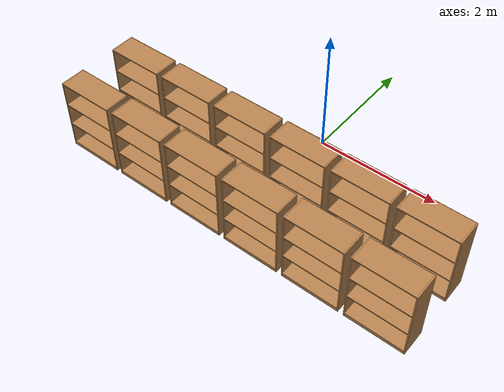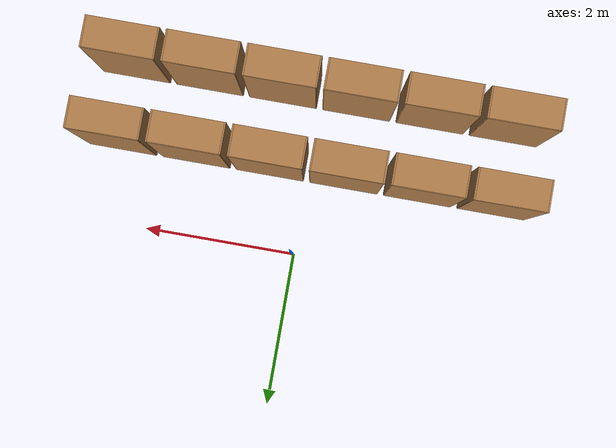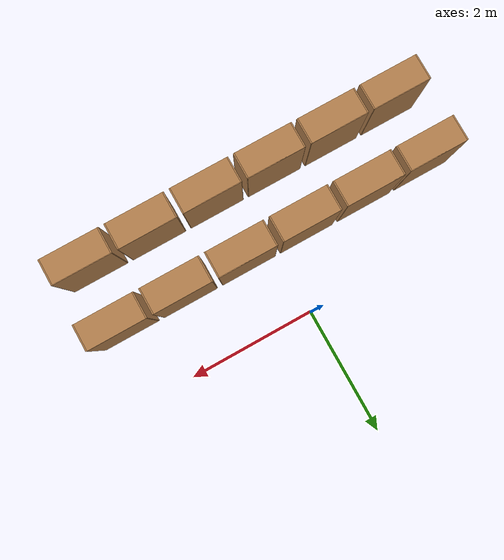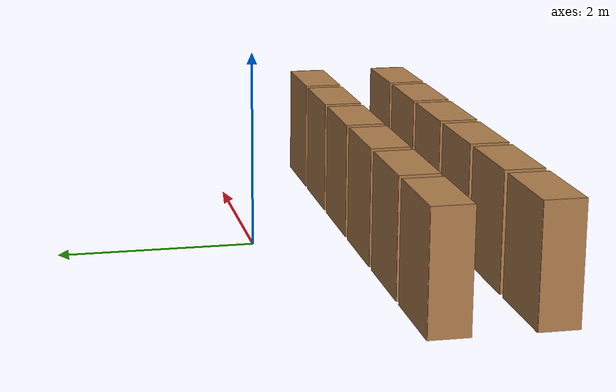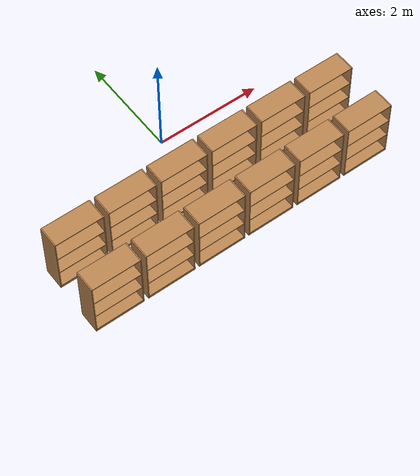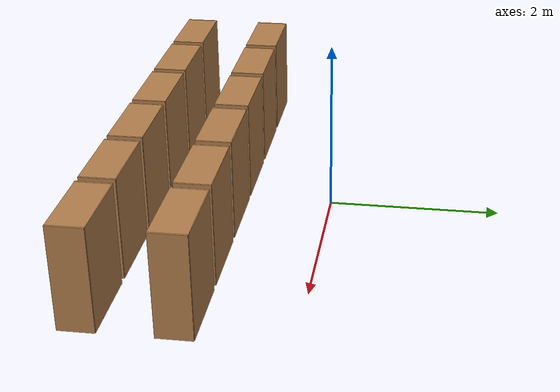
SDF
<sdf version="1.6">
 <model name="5Bookshelves">
  <model name="BookshelfRow">
   <model name="bookshelf">
    <static>1</static>
    <link name="link">
     <inertial><mass>1</mass></inertial>
     <collision name="back">
      <pose>0 0.005 0.6 0 -0 0</pose>
      <geometry><box><size>0.9 0.01 1.2</size></box></geometry>
     </collision>
     <visual name="visual1">
      <pose>0 0.005 0.6 0 -0 0</pose>
      <geometry><box><size>0.9 0.01 1.2</size></box></geometry>
      <material>
       <script><uri>file://media/materials/scripts/gazebo.material</uri><name>Gazebo/Wood</name></script>
      </material>
     </visual>
     <collision name="left_side">
      <pose>0.45 -0.195 0.6 0 -0 0</pose>
      <geometry><box><size>0.02 0.4 1.2</size></box></geometry>
     </collision>
     <visual name="visual2">
      <pose>0.45 -0.195 0.6 0 -0 0</pose>
      <geometry><box><size>0.02 0.4 1.2</size></box></geometry>
      <material>
       <script><uri>file://media/materials/scripts/gazebo.material</uri><name>Gazebo/Wood</name></script>
      </material>
     </visual>
     <collision name="right_side">
      <pose>-0.45 -0.195 0.6 0 -0 0</pose>
      <geometry><box><size>0.02 0.4 1.2</size></box></geometry>
     </collision>
     <visual name="visual3">
      <pose>-0.45 -0.195 0.6 0 -0 0</pose>
      <geometry><box><size>0.02 0.4 1.2</size></box></geometry>
      <material>
       <script><uri>file://media/materials/scripts/gazebo.material</uri><name>Gazebo/Wood</name></script>
      </material>
     </visual>
     <collision name="bottom">
      <pose>0 -0.195 0.03 0 -0 0</pose>
      <geometry><box><size>0.88 0.4 0.06</size></box></geometry>
     </collision>
     <visual name="visual4">
      <pose>0 -0.195 0.03 0 -0 0</pose>
      <geometry><box><size>0.88 0.4 0.06</size></box></geometry>
      <material>
       <script><uri>file://media/materials/scripts/gazebo.material</uri><name>Gazebo/Wood</name></script>
      </material>
     </visual>
     <collision name="top">
      <pose>0 -0.195 1.19 0 -0 0</pose>
      <geometry><box><size>0.88 0.4 0.02</size></box></geometry>
     </collision>
     <visual name="visual5">
      <pose>0 -0.195 1.19 0 -0 0</pose>
      <geometry><box><size>0.88 0.4 0.02</size></box></geometry>
      <material>
       <script><uri>file://media/materials/scripts/gazebo.material</uri><name>Gazebo/Wood</name></script>
      </material>
     </visual>
     <collision name="low_shelf">
      <pose>0 -0.195 0.43 0 -0 0</pose>
      <geometry><box><size>0.88 0.4 0.02</size></box></geometry>
     </collision>
     <visual name="visual6">
      <pose>0 -0.195 0.43 0 -0 0</pose>
      <geometry><box><size>0.88 0.4 0.02</size></box></geometry>
      <material>
       <script><uri>file://media/materials/scripts/gazebo.material</uri><name>Gazebo/Wood</name></script>
      </material>
     </visual>
     <collision name="high_shelf">
      <pose>0 -0.195 0.8 0 -0 0</pose>
      <geometry><box><size>0.88 0.4 0.02</size></box></geometry>
     </collision>
     <visual name="visual7">
      <pose>0 -0.195 0.8 0 -0 0</pose>
      <geometry><box><size>0.88 0.4 0.02</size></box></geometry>
      <material>
       <script><uri>file://media/materials/scripts/gazebo.material</uri><name>Gazebo/Wood</name></script>
      </material>
     </visual>
    </link>
    <pose>-2.5 0 0 0 -0 0</pose>
   </model>
   <model name="bookshelf_0">
    <static>1</static>
    <link name="link">
     <inertial><mass>1</mass></inertial>
     <collision name="back">
      <pose>0 0.005 0.6 0 -0 0</pose>
      <geometry><box><size>0.9 0.01 1.2</size></box></geometry>
     </collision>
     <visual name="visual1">
      <pose>0 0.005 0.6 0 -0 0</pose>
      <geometry><box><size>0.9 0.01 1.2</size></box></geometry>
      <material>
       <script><uri>file://media/materials/scripts/gazebo.material</uri><name>Gazebo/Wood</name></script>
      </material>
     </visual>
     <collision name="left_side">
      <pose>0.45 -0.195 0.6 0 -0 0</pose>
      <geometry><box><size>0.02 0.4 1.2</size></box></geometry>
     </collision>
     <visual name="visual2">
      <pose>0.45 -0.195 0.6 0 -0 0</pose>
      <geometry><box><size>0.02 0.4 1.2</size></box></geometry>
      <material>
       <script><uri>file://media/materials/scripts/gazebo.material</uri><name>Gazebo/Wood</name></script>
      </material>
     </visual>
     <collision name="right_side">
      <pose>-0.45 -0.195 0.6 0 -0 0</pose>
      <geometry><box><size>0.02 0.4 1.2</size></box></geometry>
     </collision>
     <visual name="visual3">
      <pose>-0.45 -0.195 0.6 0 -0 0</pose>
      <geometry><box><size>0.02 0.4 1.2</size></box></geometry>
      <material>
       <script><uri>file://media/materials/scripts/gazebo.material</uri><name>Gazebo/Wood</name></script>
      </material>
     </visual>
     <collision name="bottom">
      <pose>0 -0.195 0.03 0 -0 0</pose>
      <geometry><box><size>0.88 0.4 0.06</size></box></geometry>
     </collision>
     <visual name="visual4">
      <pose>0 -0.195 0.03 0 -0 0</pose>
      <geometry><box><size>0.88 0.4 0.06</size></box></geometry>
      <material>
       <script><uri>file://media/materials/scripts/gazebo.material</uri><name>Gazebo/Wood</name></script>
      </material>
     </visual>
     <collision name="top">
      <pose>0 -0.195 1.19 0 -0 0</pose>
      <geometry><box><size>0.88 0.4 0.02</size></box></geometry>
     </collision>
     <visual name="visual5">
      <pose>0 -0.195 1.19 0 -0 0</pose>
      <geometry><box><size>0.88 0.4 0.02</size></box></geometry>
      <material>
       <script><uri>file://media/materials/scripts/gazebo.material</uri><name>Gazebo/Wood</name></script>
      </material>
     </visual>
     <collision name="low_shelf">
      <pose>0 -0.195 0.43 0 -0 0</pose>
      <geometry><box><size>0.88 0.4 0.02</size></box></geometry>
     </collision>
     <visual name="visual6">
      <pose>0 -0.195 0.43 0 -0 0</pose>
      <geometry><box><size>0.88 0.4 0.02</size></box></geometry>
      <material>
       <script><uri>file://media/materials/scripts/gazebo.material</uri><name>Gazebo/Wood</name></script>
      </material>
     </visual>
     <collision name="high_shelf">
      <pose>0 -0.195 0.8 0 -0 0</pose>
      <geometry><box><size>0.88 0.4 0.02</size></box></geometry>
     </collision>
     <visual name="visual7">
      <pose>0 -0.195 0.8 0 -0 0</pose>
      <geometry><box><size>0.88 0.4 0.02</size></box></geometry>
      <material>
       <script><uri>file://media/materials/scripts/gazebo.material</uri><name>Gazebo/Wood</name></script>
      </material>
     </visual>
    </link>
    <pose>-1.5 0 0 0 -0 0</pose>
   </model>
   <model name="bookshelf_1">
    <static>1</static>
    <link name="link">
     <inertial><mass>1</mass></inertial>
     <collision name="back">
      <pose>0 0.005 0.6 0 -0 0</pose>
      <geometry><box><size>0.9 0.01 1.2</size></box></geometry>
     </collision>
     <visual name="visual1">
      <pose>0 0.005 0.6 0 -0 0</pose>
      <geometry><box><size>0.9 0.01 1.2</size></box></geometry>
      <material>
       <script><uri>file://media/materials/scripts/gazebo.material</uri><name>Gazebo/Wood</name></script>
      </material>
     </visual>
     <collision name="left_side">
      <pose>0.45 -0.195 0.6 0 -0 0</pose>
      <geometry><box><size>0.02 0.4 1.2</size></box></geometry>
     </collision>
     <visual name="visual2">
      <pose>0.45 -0.195 0.6 0 -0 0</pose>
      <geometry><box><size>0.02 0.4 1.2</size></box></geometry>
      <material>
       <script><uri>file://media/materials/scripts/gazebo.material</uri><name>Gazebo/Wood</name></script>
      </material>
     </visual>
     <collision name="right_side">
      <pose>-0.45 -0.195 0.6 0 -0 0</pose>
      <geometry><box><size>0.02 0.4 1.2</size></box></geometry>
     </collision>
     <visual name="visual3">
      <pose>-0.45 -0.195 0.6 0 -0 0</pose>
      <geometry><box><size>0.02 0.4 1.2</size></box></geometry>
      <material>
       <script><uri>file://media/materials/scripts/gazebo.material</uri><name>Gazebo/Wood</name></script>
      </material>
     </visual>
     <collision name="bottom">
      <pose>0 -0.195 0.03 0 -0 0</pose>
      <geometry><box><size>0.88 0.4 0.06</size></box></geometry>
     </collision>
     <visual name="visual4">
      <pose>0 -0.195 0.03 0 -0 0</pose>
      <geometry><box><size>0.88 0.4 0.06</size></box></geometry>
      <material>
       <script><uri>file://media/materials/scripts/gazebo.material</uri><name>Gazebo/Wood</name></script>
      </material>
     </visual>
     <collision name="top">
      <pose>0 -0.195 1.19 0 -0 0</pose>
      <geometry><box><size>0.88 0.4 0.02</size></box></geometry>
     </collision>
     <visual name="visual5">
      <pose>0 -0.195 1.19 0 -0 0</pose>
      <geometry><box><size>0.88 0.4 0.02</size></box></geometry>
      <material>
       <script><uri>file://media/materials/scripts/gazebo.material</uri><name>Gazebo/Wood</name></script>
      </material>
     </visual>
     <collision name="low_shelf">
      <pose>0 -0.195 0.43 0 -0 0</pose>
      <geometry><box><size>0.88 0.4 0.02</size></box></geometry>
     </collision>
     <visual name="visual6">
      <pose>0 -0.195 0.43 0 -0 0</pose>
      <geometry><box><size>0.88 0.4 0.02</size></box></geometry>
      <material>
       <script><uri>file://media/materials/scripts/gazebo.material</uri><name>Gazebo/Wood</name></script>
      </material>
     </visual>
     <collision name="high_shelf">
      <pose>0 -0.195 0.8 0 -0 0</pose>
      <geometry><box><size>0.88 0.4 0.02</size></box></geometry>
     </collision>
     <visual name="visual7">
      <pose>0 -0.195 0.8 0 -0 0</pose>
      <geometry><box><size>0.88 0.4 0.02</size></box></geometry>
      <material>
       <script><uri>file://media/materials/scripts/gazebo.material</uri><name>Gazebo/Wood</name></script>
      </material>
     </visual>
    </link>
    <pose>-0.5 0 0 0 -0 0</pose>
   </model>
   <model name="bookshelf_2">
    <static>1</static>
    <link name="link">
     <inertial><mass>1</mass></inertial>
     <collision name="back">
      <pose>0 0.005 0.6 0 -0 0</pose>
      <geometry><box><size>0.9 0.01 1.2</size></box></geometry>
     </collision>
     <visual name="visual1">
      <pose>0 0.005 0.6 0 -0 0</pose>
      <geometry><box><size>0.9 0.01 1.2</size></box></geometry>
      <material>
       <script><uri>file://media/materials/scripts/gazebo.material</uri><name>Gazebo/Wood</name></script>
      </material>
     </visual>
     <collision name="left_side">
      <pose>0.45 -0.195 0.6 0 -0 0</pose>
      <geometry><box><size>0.02 0.4 1.2</size></box></geometry>
     </collision>
     <visual name="visual2">
      <pose>0.45 -0.195 0.6 0 -0 0</pose>
      <geometry><box><size>0.02 0.4 1.2</size></box></geometry>
      <material>
       <script><uri>file://media/materials/scripts/gazebo.material</uri><name>Gazebo/Wood</name></script>
      </material>
     </visual>
     <collision name="right_side">
      <pose>-0.45 -0.195 0.6 0 -0 0</pose>
      <geometry><box><size>0.02 0.4 1.2</size></box></geometry>
     </collision>
     <visual name="visual3">
      <pose>-0.45 -0.195 0.6 0 -0 0</pose>
      <geometry><box><size>0.02 0.4 1.2</size></box></geometry>
      <material>
       <script><uri>file://media/materials/scripts/gazebo.material</uri><name>Gazebo/Wood</name></script>
      </material>
     </visual>
     <collision name="bottom">
      <pose>0 -0.195 0.03 0 -0 0</pose>
      <geometry><box><size>0.88 0.4 0.06</size></box></geometry>
     </collision>
     <visual name="visual4">
      <pose>0 -0.195 0.03 0 -0 0</pose>
      <geometry><box><size>0.88 0.4 0.06</size></box></geometry>
      <material>
       <script><uri>file://media/materials/scripts/gazebo.material</uri><name>Gazebo/Wood</name></script>
      </material>
     </visual>
     <collision name="top">
      <pose>0 -0.195 1.19 0 -0 0</pose>
      <geometry><box><size>0.88 0.4 0.02</size></box></geometry>
     </collision>
     <visual name="visual5">
      <pose>0 -0.195 1.19 0 -0 0</pose>
      <geometry><box><size>0.88 0.4 0.02</size></box></geometry>
      <material>
       <script><uri>file://media/materials/scripts/gazebo.material</uri><name>Gazebo/Wood</name></script>
      </material>
     </visual>
     <collision name="low_shelf">
      <pose>0 -0.195 0.43 0 -0 0</pose>
      <geometry><box><size>0.88 0.4 0.02</size></box></geometry>
     </collision>
     <visual name="visual6">
      <pose>0 -0.195 0.43 0 -0 0</pose>
      <geometry><box><size>0.88 0.4 0.02</size></box></geometry>
      <material>
       <script><uri>file://media/materials/scripts/gazebo.material</uri><name>Gazebo/Wood</name></script>
      </material>
     </visual>
     <collision name="high_shelf">
      <pose>0 -0.195 0.8 0 -0 0</pose>
      <geometry><box><size>0.88 0.4 0.02</size></box></geometry>
     </collision>
     <visual name="visual7">
      <pose>0 -0.195 0.8 0 -0 0</pose>
      <geometry><box><size>0.88 0.4 0.02</size></box></geometry>
      <material>
       <script><uri>file://media/materials/scripts/gazebo.material</uri><name>Gazebo/Wood</name></script>
      </material>
     </visual>
    </link>
    <pose>0.5 0 0 0 -0 0</pose>
   </model>
   <model name="bookshelf_3">
    <static>1</static>
    <link name="link">
     <inertial><mass>1</mass></inertial>
     <collision name="back">
      <pose>0 0.005 0.6 0 -0 0</pose>
      <geometry><box><size>0.9 0.01 1.2</size></box></geometry>
     </collision>
     <visual name="visual1">
      <pose>0 0.005 0.6 0 -0 0</pose>
      <geometry><box><size>0.9 0.01 1.2</size></box></geometry>
      <material>
       <script><uri>file://media/materials/scripts/gazebo.material</uri><name>Gazebo/Wood</name></script>
      </material>
     </visual>
     <collision name="left_side">
      <pose>0.45 -0.195 0.6 0 -0 0</pose>
      <geometry><box><size>0.02 0.4 1.2</size></box></geometry>
     </collision>
     <visual name="visual2">
      <pose>0.45 -0.195 0.6 0 -0 0</pose>
      <geometry><box><size>0.02 0.4 1.2</size></box></geometry>
      <material>
       <script><uri>file://media/materials/scripts/gazebo.material</uri><name>Gazebo/Wood</name></script>
      </material>
     </visual>
     <collision name="right_side">
      <pose>-0.45 -0.195 0.6 0 -0 0</pose>
      <geometry><box><size>0.02 0.4 1.2</size></box></geometry>
     </collision>
     <visual name="visual3">
      <pose>-0.45 -0.195 0.6 0 -0 0</pose>
      <geometry><box><size>0.02 0.4 1.2</size></box></geometry>
      <material>
       <script><uri>file://media/materials/scripts/gazebo.material</uri><name>Gazebo/Wood</name></script>
      </material>
     </visual>
     <collision name="bottom">
      <pose>0 -0.195 0.03 0 -0 0</pose>
      <geometry><box><size>0.88 0.4 0.06</size></box></geometry>
     </collision>
     <visual name="visual4">
      <pose>0 -0.195 0.03 0 -0 0</pose>
      <geometry><box><size>0.88 0.4 0.06</size></box></geometry>
      <material>
       <script><uri>file://media/materials/scripts/gazebo.material</uri><name>Gazebo/Wood</name></script>
      </material>
     </visual>
     <collision name="top">
      <pose>0 -0.195 1.19 0 -0 0</pose>
      <geometry><box><size>0.88 0.4 0.02</size></box></geometry>
     </collision>
     <visual name="visual5">
      <pose>0 -0.195 1.19 0 -0 0</pose>
      <geometry><box><size>0.88 0.4 0.02</size></box></geometry>
      <material>
       <script><uri>file://media/materials/scripts/gazebo.material</uri><name>Gazebo/Wood</name></script>
      </material>
     </visual>
     <collision name="low_shelf">
      <pose>0 -0.195 0.43 0 -0 0</pose>
      <geometry><box><size>0.88 0.4 0.02</size></box></geometry>
     </collision>
     <visual name="visual6">
      <pose>0 -0.195 0.43 0 -0 0</pose>
      <geometry><box><size>0.88 0.4 0.02</size></box></geometry>
      <material>
       <script><uri>file://media/materials/scripts/gazebo.material</uri><name>Gazebo/Wood</name></script>
      </material>
     </visual>
     <collision name="high_shelf">
      <pose>0 -0.195 0.8 0 -0 0</pose>
      <geometry><box><size>0.88 0.4 0.02</size></box></geometry>
     </collision>
     <visual name="visual7">
      <pose>0 -0.195 0.8 0 -0 0</pose>
      <geometry><box><size>0.88 0.4 0.02</size></box></geometry>
      <material>
       <script><uri>file://media/materials/scripts/gazebo.material</uri><name>Gazebo/Wood</name></script>
      </material>
     </visual>
    </link>
    <pose>1.5 0 0 0 -0 0</pose>
   </model>
   <model name="bookshelf_4">
    <static>1</static>
    <link name="link">
     <inertial><mass>1</mass></inertial>
     <collision name="back">
      <pose>0 0.005 0.6 0 -0 0</pose>
      <geometry><box><size>0.9 0.01 1.2</size></box></geometry>
     </collision>
     <visual name="visual1">
      <pose>0 0.005 0.6 0 -0 0</pose>
      <geometry><box><size>0.9 0.01 1.2</size></box></geometry>
      <material>
       <script><uri>file://media/materials/scripts/gazebo.material</uri><name>Gazebo/Wood</name></script>
      </material>
     </visual>
     <collision name="left_side">
      <pose>0.45 -0.195 0.6 0 -0 0</pose>
      <geometry><box><size>0.02 0.4 1.2</size></box></geometry>
     </collision>
     <visual name="visual2">
      <pose>0.45 -0.195 0.6 0 -0 0</pose>
      <geometry><box><size>0.02 0.4 1.2</size></box></geometry>
      <material>
       <script><uri>file://media/materials/scripts/gazebo.material</uri><name>Gazebo/Wood</name></script>
      </material>
     </visual>
     <collision name="right_side">
      <pose>-0.45 -0.195 0.6 0 -0 0</pose>
      <geometry><box><size>0.02 0.4 1.2</size></box></geometry>
     </collision>
     <visual name="visual3">
      <pose>-0.45 -0.195 0.6 0 -0 0</pose>
      <geometry><box><size>0.02 0.4 1.2</size></box></geometry>
      <material>
       <script><uri>file://media/materials/scripts/gazebo.material</uri><name>Gazebo/Wood</name></script>
      </material>
     </visual>
     <collision name="bottom">
      <pose>0 -0.195 0.03 0 -0 0</pose>
      <geometry><box><size>0.88 0.4 0.06</size></box></geometry>
     </collision>
     <visual name="visual4">
      <pose>0 -0.195 0.03 0 -0 0</pose>
      <geometry><box><size>0.88 0.4 0.06</size></box></geometry>
      <material>
       <script><uri>file://media/materials/scripts/gazebo.material</uri><name>Gazebo/Wood</name></script>
      </material>
     </visual>
     <collision name="top">
      <pose>0 -0.195 1.19 0 -0 0</pose>
      <geometry><box><size>0.88 0.4 0.02</size></box></geometry>
     </collision>
     <visual name="visual5">
      <pose>0 -0.195 1.19 0 -0 0</pose>
      <geometry><box><size>0.88 0.4 0.02</size></box></geometry>
      <material>
       <script><uri>file://media/materials/scripts/gazebo.material</uri><name>Gazebo/Wood</name></script>
      </material>
     </visual>
     <collision name="low_shelf">
      <pose>0 -0.195 0.43 0 -0 0</pose>
      <geometry><box><size>0.88 0.4 0.02</size></box></geometry>
     </collision>
     <visual name="visual6">
      <pose>0 -0.195 0.43 0 -0 0</pose>
      <geometry><box><size>0.88 0.4 0.02</size></box></geometry>
      <material>
       <script><uri>file://media/materials/scripts/gazebo.material</uri><name>Gazebo/Wood</name></script>
      </material>
     </visual>
     <collision name="high_shelf">
      <pose>0 -0.195 0.8 0 -0 0</pose>
      <geometry><box><size>0.88 0.4 0.02</size></box></geometry>
     </collision>
     <visual name="visual7">
      <pose>0 -0.195 0.8 0 -0 0</pose>
      <geometry><box><size>0.88 0.4 0.02</size></box></geometry>
      <material>
       <script><uri>file://media/materials/scripts/gazebo.material</uri><name>Gazebo/Wood</name></script>
      </material>
     </visual>
    </link>
    <pose>2.5 0 0 0 -0 0</pose>
   </model>
   <static>0</static>
   <pose>0 -2 0 0 -0 0</pose>
  </model>
  <model name="BookshelfRow_0">
   <model name="bookshelf">
    <static>1</static>
    <link name="link">
     <inertial><mass>1</mass></inertial>
     <collision name="back">
      <pose>0 0.005 0.6 0 -0 0</pose>
      <geometry><box><size>0.9 0.01 1.2</size></box></geometry>
     </collision>
     <visual name="visual1">
      <pose>0 0.005 0.6 0 -0 0</pose>
      <geometry><box><size>0.9 0.01 1.2</size></box></geometry>
      <material>
       <script><uri>file://media/materials/scripts/gazebo.material</uri><name>Gazebo/Wood</name></script>
      </material>
     </visual>
     <collision name="left_side">
      <pose>0.45 -0.195 0.6 0 -0 0</pose>
      <geometry><box><size>0.02 0.4 1.2</size></box></geometry>
     </collision>
     <visual name="visual2">
      <pose>0.45 -0.195 0.6 0 -0 0</pose>
      <geometry><box><size>0.02 0.4 1.2</size></box></geometry>
      <material>
       <script><uri>file://media/materials/scripts/gazebo.material</uri><name>Gazebo/Wood</name></script>
      </material>
     </visual>
     <collision name="right_side">
      <pose>-0.45 -0.195 0.6 0 -0 0</pose>
      <geometry><box><size>0.02 0.4 1.2</size></box></geometry>
     </collision>
     <visual name="visual3">
      <pose>-0.45 -0.195 0.6 0 -0 0</pose>
      <geometry><box><size>0.02 0.4 1.2</size></box></geometry>
      <material>
       <script><uri>file://media/materials/scripts/gazebo.material</uri><name>Gazebo/Wood</name></script>
      </material>
     </visual>
     <collision name="bottom">
      <pose>0 -0.195 0.03 0 -0 0</pose>
      <geometry><box><size>0.88 0.4 0.06</size></box></geometry>
     </collision>
     <visual name="visual4">
      <pose>0 -0.195 0.03 0 -0 0</pose>
      <geometry><box><size>0.88 0.4 0.06</size></box></geometry>
      <material>
       <script><uri>file://media/materials/scripts/gazebo.material</uri><name>Gazebo/Wood</name></script>
      </material>
     </visual>
     <collision name="top">
      <pose>0 -0.195 1.19 0 -0 0</pose>
      <geometry><box><size>0.88 0.4 0.02</size></box></geometry>
     </collision>
     <visual name="visual5">
      <pose>0 -0.195 1.19 0 -0 0</pose>
      <geometry><box><size>0.88 0.4 0.02</size></box></geometry>
      <material>
       <script><uri>file://media/materials/scripts/gazebo.material</uri><name>Gazebo/Wood</name></script>
      </material>
     </visual>
     <collision name="low_shelf">
      <pose>0 -0.195 0.43 0 -0 0</pose>
      <geometry><box><size>0.88 0.4 0.02</size></box></geometry>
     </collision>
     <visual name="visual6">
      <pose>0 -0.195 0.43 0 -0 0</pose>
      <geometry><box><size>0.88 0.4 0.02</size></box></geometry>
      <material>
       <script><uri>file://media/materials/scripts/gazebo.material</uri><name>Gazebo/Wood</name></script>
      </material>
     </visual>
     <collision name="high_shelf">
      <pose>0 -0.195 0.8 0 -0 0</pose>
      <geometry><box><size>0.88 0.4 0.02</size></box></geometry>
     </collision>
     <visual name="visual7">
      <pose>0 -0.195 0.8 0 -0 0</pose>
      <geometry><box><size>0.88 0.4 0.02</size></box></geometry>
      <material>
       <script><uri>file://media/materials/scripts/gazebo.material</uri><name>Gazebo/Wood</name></script>
      </material>
     </visual>
    </link>
    <pose>-2.5 0 0 0 -0 0</pose>
   </model>
   <model name="bookshelf_0">
    <static>1</static>
    <link name="link">
     <inertial><mass>1</mass></inertial>
     <collision name="back">
      <pose>0 0.005 0.6 0 -0 0</pose>
      <geometry><box><size>0.9 0.01 1.2</size></box></geometry>
     </collision>
     <visual name="visual1">
      <pose>0 0.005 0.6 0 -0 0</pose>
      <geometry><box><size>0.9 0.01 1.2</size></box></geometry>
      <material>
       <script><uri>file://media/materials/scripts/gazebo.material</uri><name>Gazebo/Wood</name></script>
      </material>
     </visual>
     <collision name="left_side">
      <pose>0.45 -0.195 0.6 0 -0 0</pose>
      <geometry><box><size>0.02 0.4 1.2</size></box></geometry>
     </collision>
     <visual name="visual2">
      <pose>0.45 -0.195 0.6 0 -0 0</pose>
      <geometry><box><size>0.02 0.4 1.2</size></box></geometry>
      <material>
       <script><uri>file://media/materials/scripts/gazebo.material</uri><name>Gazebo/Wood</name></script>
      </material>
     </visual>
     <collision name="right_side">
      <pose>-0.45 -0.195 0.6 0 -0 0</pose>
      <geometry><box><size>0.02 0.4 1.2</size></box></geometry>
     </collision>
     <visual name="visual3">
      <pose>-0.45 -0.195 0.6 0 -0 0</pose>
      <geometry><box><size>0.02 0.4 1.2</size></box></geometry>
      <material>
       <script><uri>file://media/materials/scripts/gazebo.material</uri><name>Gazebo/Wood</name></script>
      </material>
     </visual>
     <collision name="bottom">
      <pose>0 -0.195 0.03 0 -0 0</pose>
      <geometry><box><size>0.88 0.4 0.06</size></box></geometry>
     </collision>
     <visual name="visual4">
      <pose>0 -0.195 0.03 0 -0 0</pose>
      <geometry><box><size>0.88 0.4 0.06</size></box></geometry>
      <material>
       <script><uri>file://media/materials/scripts/gazebo.material</uri><name>Gazebo/Wood</name></script>
      </material>
     </visual>
     <collision name="top">
      <pose>0 -0.195 1.19 0 -0 0</pose>
      <geometry><box><size>0.88 0.4 0.02</size></box></geometry>
     </collision>
     <visual name="visual5">
      <pose>0 -0.195 1.19 0 -0 0</pose>
      <geometry><box><size>0.88 0.4 0.02</size></box></geometry>
      <material>
       <script><uri>file://media/materials/scripts/gazebo.material</uri><name>Gazebo/Wood</name></script>
      </material>
     </visual>
     <collision name="low_shelf">
      <pose>0 -0.195 0.43 0 -0 0</pose>
      <geometry><box><size>0.88 0.4 0.02</size></box></geometry>
     </collision>
     <visual name="visual6">
      <pose>0 -0.195 0.43 0 -0 0</pose>
      <geometry><box><size>0.88 0.4 0.02</size></box></geometry>
      <material>
       <script><uri>file://media/materials/scripts/gazebo.material</uri><name>Gazebo/Wood</name></script>
      </material>
     </visual>
     <collision name="high_shelf">
      <pose>0 -0.195 0.8 0 -0 0</pose>
      <geometry><box><size>0.88 0.4 0.02</size></box></geometry>
     </collision>
     <visual name="visual7">
      <pose>0 -0.195 0.8 0 -0 0</pose>
      <geometry><box><size>0.88 0.4 0.02</size></box></geometry>
      <material>
       <script><uri>file://media/materials/scripts/gazebo.material</uri><name>Gazebo/Wood</name></script>
      </material>
     </visual>
    </link>
    <pose>-1.5 0 0 0 -0 0</pose>
   </model>
   <model name="bookshelf_1">
    <static>1</static>
    <link name="link">
     <inertial><mass>1</mass></inertial>
     <collision name="back">
      <pose>0 0.005 0.6 0 -0 0</pose>
      <geometry><box><size>0.9 0.01 1.2</size></box></geometry>
     </collision>
     <visual name="visual1">
      <pose>0 0.005 0.6 0 -0 0</pose>
      <geometry><box><size>0.9 0.01 1.2</size></box></geometry>
      <material>
       <script><uri>file://media/materials/scripts/gazebo.material</uri><name>Gazebo/Wood</name></script>
      </material>
     </visual>
     <collision name="left_side">
      <pose>0.45 -0.195 0.6 0 -0 0</pose>
      <geometry><box><size>0.02 0.4 1.2</size></box></geometry>
     </collision>
     <visual name="visual2">
      <pose>0.45 -0.195 0.6 0 -0 0</pose>
      <geometry><box><size>0.02 0.4 1.2</size></box></geometry>
      <material>
       <script><uri>file://media/materials/scripts/gazebo.material</uri><name>Gazebo/Wood</name></script>
      </material>
     </visual>
     <collision name="right_side">
      <pose>-0.45 -0.195 0.6 0 -0 0</pose>
      <geometry><box><size>0.02 0.4 1.2</size></box></geometry>
     </collision>
     <visual name="visual3">
      <pose>-0.45 -0.195 0.6 0 -0 0</pose>
      <geometry><box><size>0.02 0.4 1.2</size></box></geometry>
      <material>
       <script><uri>file://media/materials/scripts/gazebo.material</uri><name>Gazebo/Wood</name></script>
      </material>
     </visual>
     <collision name="bottom">
      <pose>0 -0.195 0.03 0 -0 0</pose>
      <geometry><box><size>0.88 0.4 0.06</size></box></geometry>
     </collision>
     <visual name="visual4">
      <pose>0 -0.195 0.03 0 -0 0</pose>
      <geometry><box><size>0.88 0.4 0.06</size></box></geometry>
      <material>
       <script><uri>file://media/materials/scripts/gazebo.material</uri><name>Gazebo/Wood</name></script>
      </material>
     </visual>
     <collision name="top">
      <pose>0 -0.195 1.19 0 -0 0</pose>
      <geometry><box><size>0.88 0.4 0.02</size></box></geometry>
     </collision>
     <visual name="visual5">
      <pose>0 -0.195 1.19 0 -0 0</pose>
      <geometry><box><size>0.88 0.4 0.02</size></box></geometry>
      <material>
       <script><uri>file://media/materials/scripts/gazebo.material</uri><name>Gazebo/Wood</name></script>
      </material>
     </visual>
     <collision name="low_shelf">
      <pose>0 -0.195 0.43 0 -0 0</pose>
      <geometry><box><size>0.88 0.4 0.02</size></box></geometry>
     </collision>
     <visual name="visual6">
      <pose>0 -0.195 0.43 0 -0 0</pose>
      <geometry><box><size>0.88 0.4 0.02</size></box></geometry>
      <material>
       <script><uri>file://media/materials/scripts/gazebo.material</uri><name>Gazebo/Wood</name></script>
      </material>
     </visual>
     <collision name="high_shelf">
      <pose>0 -0.195 0.8 0 -0 0</pose>
      <geometry><box><size>0.88 0.4 0.02</size></box></geometry>
     </collision>
     <visual name="visual7">
      <pose>0 -0.195 0.8 0 -0 0</pose>
      <geometry><box><size>0.88 0.4 0.02</size></box></geometry>
      <material>
       <script><uri>file://media/materials/scripts/gazebo.material</uri><name>Gazebo/Wood</name></script>
      </material>
     </visual>
    </link>
    <pose>-0.5 0 0 0 -0 0</pose>
   </model>
   <model name="bookshelf_2">
    <static>1</static>
    <link name="link">
     <inertial><mass>1</mass></inertial>
     <collision name="back">
      <pose>0 0.005 0.6 0 -0 0</pose>
      <geometry><box><size>0.9 0.01 1.2</size></box></geometry>
     </collision>
     <visual name="visual1">
      <pose>0 0.005 0.6 0 -0 0</pose>
      <geometry><box><size>0.9 0.01 1.2</size></box></geometry>
      <material>
       <script><uri>file://media/materials/scripts/gazebo.material</uri><name>Gazebo/Wood</name></script>
      </material>
     </visual>
     <collision name="left_side">
      <pose>0.45 -0.195 0.6 0 -0 0</pose>
      <geometry><box><size>0.02 0.4 1.2</size></box></geometry>
     </collision>
     <visual name="visual2">
      <pose>0.45 -0.195 0.6 0 -0 0</pose>
      <geometry><box><size>0.02 0.4 1.2</size></box></geometry>
      <material>
       <script><uri>file://media/materials/scripts/gazebo.material</uri><name>Gazebo/Wood</name></script>
      </material>
     </visual>
     <collision name="right_side">
      <pose>-0.45 -0.195 0.6 0 -0 0</pose>
      <geometry><box><size>0.02 0.4 1.2</size></box></geometry>
     </collision>
     <visual name="visual3">
      <pose>-0.45 -0.195 0.6 0 -0 0</pose>
      <geometry><box><size>0.02 0.4 1.2</size></box></geometry>
      <material>
       <script><uri>file://media/materials/scripts/gazebo.material</uri><name>Gazebo/Wood</name></script>
      </material>
     </visual>
     <collision name="bottom">
      <pose>0 -0.195 0.03 0 -0 0</pose>
      <geometry><box><size>0.88 0.4 0.06</size></box></geometry>
     </collision>
     <visual name="visual4">
      <pose>0 -0.195 0.03 0 -0 0</pose>
      <geometry><box><size>0.88 0.4 0.06</size></box></geometry>
      <material>
       <script><uri>file://media/materials/scripts/gazebo.material</uri><name>Gazebo/Wood</name></script>
      </material>
     </visual>
     <collision name="top">
      <pose>0 -0.195 1.19 0 -0 0</pose>
      <geometry><box><size>0.88 0.4 0.02</size></box></geometry>
     </collision>
     <visual name="visual5">
      <pose>0 -0.195 1.19 0 -0 0</pose>
      <geometry><box><size>0.88 0.4 0.02</size></box></geometry>
      <material>
       <script><uri>file://media/materials/scripts/gazebo.material</uri><name>Gazebo/Wood</name></script>
      </material>
     </visual>
     <collision name="low_shelf">
      <pose>0 -0.195 0.43 0 -0 0</pose>
      <geometry><box><size>0.88 0.4 0.02</size></box></geometry>
     </collision>
     <visual name="visual6">
      <pose>0 -0.195 0.43 0 -0 0</pose>
      <geometry><box><size>0.88 0.4 0.02</size></box></geometry>
      <material>
       <script><uri>file://media/materials/scripts/gazebo.material</uri><name>Gazebo/Wood</name></script>
      </material>
     </visual>
     <collision name="high_shelf">
      <pose>0 -0.195 0.8 0 -0 0</pose>
      <geometry><box><size>0.88 0.4 0.02</size></box></geometry>
     </collision>
     <visual name="visual7">
      <pose>0 -0.195 0.8 0 -0 0</pose>
      <geometry><box><size>0.88 0.4 0.02</size></box></geometry>
      <material>
       <script><uri>file://media/materials/scripts/gazebo.material</uri><name>Gazebo/Wood</name></script>
      </material>
     </visual>
    </link>
    <pose>0.5 0 0 0 -0 0</pose>
   </model>
   <model name="bookshelf_3">
    <static>1</static>
    <link name="link">
     <inertial><mass>1</mass></inertial>
     <collision name="back">
      <pose>0 0.005 0.6 0 -0 0</pose>
      <geometry><box><size>0.9 0.01 1.2</size></box></geometry>
     </collision>
     <visual name="visual1">
      <pose>0 0.005 0.6 0 -0 0</pose>
      <geometry><box><size>0.9 0.01 1.2</size></box></geometry>
      <material>
       <script><uri>file://media/materials/scripts/gazebo.material</uri><name>Gazebo/Wood</name></script>
      </material>
     </visual>
     <collision name="left_side">
      <pose>0.45 -0.195 0.6 0 -0 0</pose>
      <geometry><box><size>0.02 0.4 1.2</size></box></geometry>
     </collision>
     <visual name="visual2">
      <pose>0.45 -0.195 0.6 0 -0 0</pose>
      <geometry><box><size>0.02 0.4 1.2</size></box></geometry>
      <material>
       <script><uri>file://media/materials/scripts/gazebo.material</uri><name>Gazebo/Wood</name></script>
      </material>
     </visual>
     <collision name="right_side">
      <pose>-0.45 -0.195 0.6 0 -0 0</pose>
      <geometry><box><size>0.02 0.4 1.2</size></box></geometry>
     </collision>
     <visual name="visual3">
      <pose>-0.45 -0.195 0.6 0 -0 0</pose>
      <geometry><box><size>0.02 0.4 1.2</size></box></geometry>
      <material>
       <script><uri>file://media/materials/scripts/gazebo.material</uri><name>Gazebo/Wood</name></script>
      </material>
     </visual>
     <collision name="bottom">
      <pose>0 -0.195 0.03 0 -0 0</pose>
      <geometry><box><size>0.88 0.4 0.06</size></box></geometry>
     </collision>
     <visual name="visual4">
      <pose>0 -0.195 0.03 0 -0 0</pose>
      <geometry><box><size>0.88 0.4 0.06</size></box></geometry>
      <material>
       <script><uri>file://media/materials/scripts/gazebo.material</uri><name>Gazebo/Wood</name></script>
      </material>
     </visual>
     <collision name="top">
      <pose>0 -0.195 1.19 0 -0 0</pose>
      <geometry><box><size>0.88 0.4 0.02</size></box></geometry>
     </collision>
     <visual name="visual5">
      <pose>0 -0.195 1.19 0 -0 0</pose>
      <geometry><box><size>0.88 0.4 0.02</size></box></geometry>
      <material>
       <script><uri>file://media/materials/scripts/gazebo.material</uri><name>Gazebo/Wood</name></script>
      </material>
     </visual>
     <collision name="low_shelf">
      <pose>0 -0.195 0.43 0 -0 0</pose>
      <geometry><box><size>0.88 0.4 0.02</size></box></geometry>
     </collision>
     <visual name="visual6">
      <pose>0 -0.195 0.43 0 -0 0</pose>
      <geometry><box><size>0.88 0.4 0.02</size></box></geometry>
      <material>
       <script><uri>file://media/materials/scripts/gazebo.material</uri><name>Gazebo/Wood</name></script>
      </material>
     </visual>
     <collision name="high_shelf">
      <pose>0 -0.195 0.8 0 -0 0</pose>
      <geometry><box><size>0.88 0.4 0.02</size></box></geometry>
     </collision>
     <visual name="visual7">
      <pose>0 -0.195 0.8 0 -0 0</pose>
      <geometry><box><size>0.88 0.4 0.02</size></box></geometry>
      <material>
       <script><uri>file://media/materials/scripts/gazebo.material</uri><name>Gazebo/Wood</name></script>
      </material>
     </visual>
    </link>
    <pose>1.5 0 0 0 -0 0</pose>
   </model>
   <model name="bookshelf_4">
    <static>1</static>
    <link name="link">
     <inertial><mass>1</mass></inertial>
     <collision name="back">
      <pose>0 0.005 0.6 0 -0 0</pose>
      <geometry><box><size>0.9 0.01 1.2</size></box></geometry>
     </collision>
     <visual name="visual1">
      <pose>0 0.005 0.6 0 -0 0</pose>
      <geometry><box><size>0.9 0.01 1.2</size></box></geometry>
      <material>
       <script><uri>file://media/materials/scripts/gazebo.material</uri><name>Gazebo/Wood</name></script>
      </material>
     </visual>
     <collision name="left_side">
      <pose>0.45 -0.195 0.6 0 -0 0</pose>
      <geometry><box><size>0.02 0.4 1.2</size></box></geometry>
     </collision>
     <visual name="visual2">
      <pose>0.45 -0.195 0.6 0 -0 0</pose>
      <geometry><box><size>0.02 0.4 1.2</size></box></geometry>
      <material>
       <script><uri>file://media/materials/scripts/gazebo.material</uri><name>Gazebo/Wood</name></script>
      </material>
     </visual>
     <collision name="right_side">
      <pose>-0.45 -0.195 0.6 0 -0 0</pose>
      <geometry><box><size>0.02 0.4 1.2</size></box></geometry>
     </collision>
     <visual name="visual3">
      <pose>-0.45 -0.195 0.6 0 -0 0</pose>
      <geometry><box><size>0.02 0.4 1.2</size></box></geometry>
      <material>
       <script><uri>file://media/materials/scripts/gazebo.material</uri><name>Gazebo/Wood</name></script>
      </material>
     </visual>
     <collision name="bottom">
      <pose>0 -0.195 0.03 0 -0 0</pose>
      <geometry><box><size>0.88 0.4 0.06</size></box></geometry>
     </collision>
     <visual name="visual4">
      <pose>0 -0.195 0.03 0 -0 0</pose>
      <geometry><box><size>0.88 0.4 0.06</size></box></geometry>
      <material>
       <script><uri>file://media/materials/scripts/gazebo.material</uri><name>Gazebo/Wood</name></script>
      </material>
     </visual>
     <collision name="top">
      <pose>0 -0.195 1.19 0 -0 0</pose>
      <geometry><box><size>0.88 0.4 0.02</size></box></geometry>
     </collision>
     <visual name="visual5">
      <pose>0 -0.195 1.19 0 -0 0</pose>
      <geometry><box><size>0.88 0.4 0.02</size></box></geometry>
      <material>
       <script><uri>file://media/materials/scripts/gazebo.material</uri><name>Gazebo/Wood</name></script>
      </material>
     </visual>
     <collision name="low_shelf">
      <pose>0 -0.195 0.43 0 -0 0</pose>
      <geometry><box><size>0.88 0.4 0.02</size></box></geometry>
     </collision>
     <visual name="visual6">
      <pose>0 -0.195 0.43 0 -0 0</pose>
      <geometry><box><size>0.88 0.4 0.02</size></box></geometry>
      <material>
       <script><uri>file://media/materials/scripts/gazebo.material</uri><name>Gazebo/Wood</name></script>
      </material>
     </visual>
     <collision name="high_shelf">
      <pose>0 -0.195 0.8 0 -0 0</pose>
      <geometry><box><size>0.88 0.4 0.02</size></box></geometry>
     </collision>
     <visual name="visual7">
      <pose>0 -0.195 0.8 0 -0 0</pose>
      <geometry><box><size>0.88 0.4 0.02</size></box></geometry>
      <material>
       <script><uri>file://media/materials/scripts/gazebo.material</uri><name>Gazebo/Wood</name></script>
      </material>
     </visual>
    </link>
    <pose>2.5 0 0 0 -0 0</pose>
   </model>
   <static>0</static>
   <pose>0 -1 0 0 -0 0</pose>
  </model>
  <static>0</static>
 </model>
</sdf>
